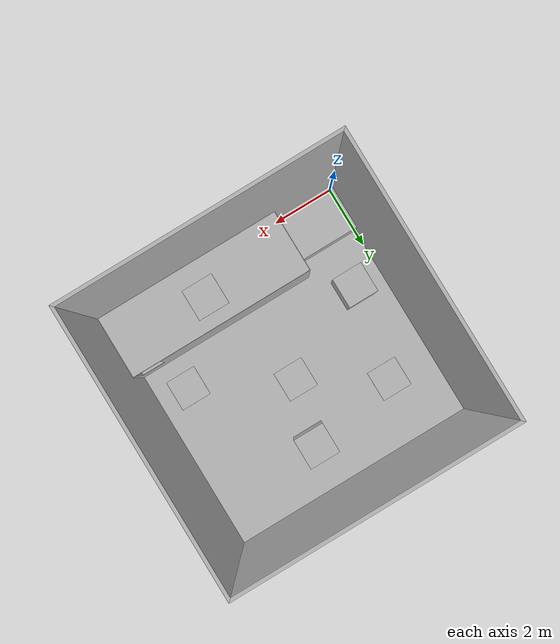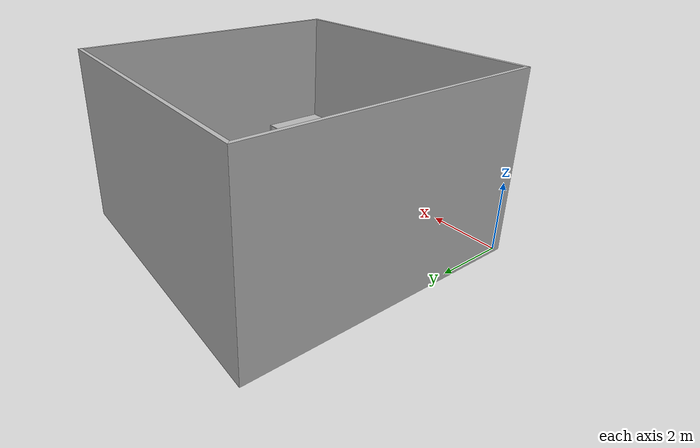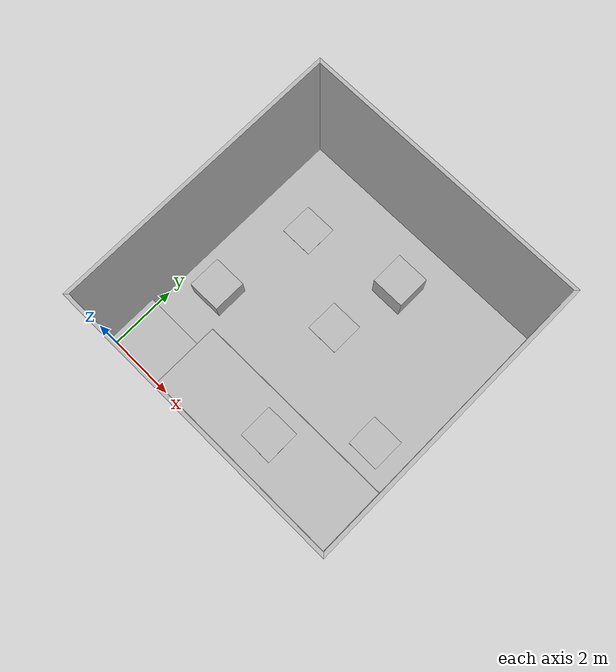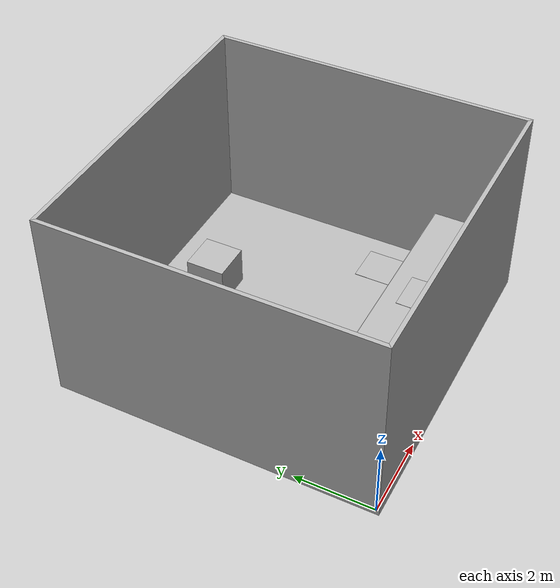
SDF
<sdf version="1.6">
 <world name="default">
  <spherical_coordinates>
   <surface_model>EARTH_WGS84</surface_model>
   <latitude_deg>47.397743</latitude_deg>
   <longitude_deg>8.545594</longitude_deg>
   <elevation>0.0</elevation>
   <heading_deg>0</heading_deg>
  </spherical_coordinates>
  <light type="directional" name="sun">
   <pose>0 0 10 0 0 0</pose>
   <diffuse>0.8 0.8 0.8 1</diffuse>
   <specular>0.2 0.2 0.2 1</specular>
   <attenuation>
    <range>1000</range>
    <constant>0.9</constant>
    <linear>0.01</linear>
    <quadratic>0.001</quadratic>
   </attenuation>
   <direction>-0.5 0.1 -0.9</direction>
  </light>
  <include><uri>file:///home/lmnr31/ros2_ws/src/arena_2025/model.sdf</uri><name>arena_2025</name></include>
  <physics name="default_physics" type="ode">
   <max_step_size>0.005</max_step_size>
   <real_time_update_rate>200</real_time_update_rate>
  </physics>
 </world>
</sdf>

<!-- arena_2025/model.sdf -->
<sdf version='1.11'>
  <model name='arena_2025'>
    <link name='base_link'>
      <inertial>
        <pose>3.7872625755697582 3.822045551665687 1.663627482728099 0 0 0</pose>
        <mass>209975.3320400707</mass>
        <inertia>
          <ixx>2460304.4850998539</ixx>
          <ixy>-120557.6832384705</ixy>
          <ixz>-60338.607062061783</ixz>
          <iyy>2418802.5829065661</iyy>
          <iyz>-44511.245931612328</iyz>
          <izz>3767199.0722933579</izz>
        </inertia>
      </inertial>
      <collision name='base_link_collision_collision'>
        <pose>0 0 0 0 0 0</pose>
        <geometry>
          <mesh>
            <scale>0.001 0.001 0.001</scale>
            <uri>meshes/base_link.stl</uri>
          </mesh>
        </geometry>
      </collision>
      <collision name='base_link_fixed_joint_lump__casa_paredes_collision_collision_1'>
        <pose>0 0 0 0 0 0</pose>
        <geometry>
          <mesh>
            <scale>0.001 0.001 0.001</scale>
            <uri>meshes/casa_paredes.stl</uri>
          </mesh>
        </geometry>
      </collision>
      <collision name='base_link_fixed_joint_lump__casa_teto_collision_collision_2'>
        <pose>0 0 4.163336342344337e-17 0 0 0</pose>
        <geometry>
          <mesh>
            <scale>0.001 0.001 0.001</scale>
            <uri>meshes/casa_teto.stl</uri>
          </mesh>
        </geometry>
      </collision>
      <collision name='base_link_fixed_joint_lump__Landing_Bases6_collision_collision_3'>
        <pose>0 -1.110223024625157e-16 -1.8041124150158789e-16 0 0 0</pose>
        <geometry>
          <mesh>
            <scale>0.001 0.001 0.001</scale>
            <uri>meshes/Landing_Bases6.stl</uri>
          </mesh>
        </geometry>
      </collision>
      <collision name='base_link_fixed_joint_lump__Landing_Bases1_collision_collision_4'>
        <pose>0 0 0 0 0 0</pose>
        <geometry>
          <mesh>
            <scale>0.001 0.001 0.001</scale>
            <uri>meshes/Landing_Bases1.stl</uri>
          </mesh>
        </geometry>
      </collision>
      <collision name='base_link_fixed_joint_lump__Landing_Bases3_collision_collision_5'>
        <pose>0 0 0 0 0 0</pose>
        <geometry>
          <mesh>
            <scale>0.001 0.001 0.001</scale>
            <uri>meshes/Landing_Bases3.stl</uri>
          </mesh>
        </geometry>
      </collision>
      <collision name='base_link_fixed_joint_lump__Landing_Bases2_collision_collision_6'>
        <pose>0 0 0 0 0 0</pose>
        <geometry>
          <mesh>
            <scale>0.001 0.001 0.001</scale>
            <uri>meshes/Landing_Bases2.stl</uri>
          </mesh>
        </geometry>
      </collision>
      <collision name='base_link_fixed_joint_lump__Landing_Bases4_collision_collision_7'>
        <pose>0 0 0 0 0 0</pose>
        <geometry>
          <mesh>
            <scale>0.001 0.001 0.001</scale>
            <uri>meshes/Landing_Bases4.stl</uri>
          </mesh>
        </geometry>
      </collision>
      <collision name='base_link_fixed_joint_lump__Landing_Bases5_collision_collision_8'>
        <pose>0 0 0 0 0 0</pose>
        <geometry>
          <mesh>
            <scale>0.001 0.001 0.001</scale>
            <uri>meshes/Landing_Bases5.stl</uri>
          </mesh>
        </geometry>
      </collision>
      <collision name='base_link_fixed_joint_lump__parede2_collision_collision_9'>
        <pose>0 -6.9388939039072284e-18 -6.9388939039072284e-18 0 0 0</pose>
        <geometry>
          <mesh>
            <scale>0.001 0.001 0.001</scale>
            <uri>meshes/parede2.stl</uri>
          </mesh>
        </geometry>
      </collision>
      <collision name='base_link_fixed_joint_lump__parede1_collision_collision_10'>
        <pose>-6.9388939039072284e-18 0 -6.9388939039072284e-18 0 0 0</pose>
        <geometry>
          <mesh>
            <scale>0.001 0.001 0.001</scale>
            <uri>meshes/parede1.stl</uri>
          </mesh>
        </geometry>
      </collision>
      <collision name='base_link_fixed_joint_lump__parede4_collision_collision_11'>
        <pose>0 0 -2.4841240175987882e-15 0 0 0</pose>
        <geometry>
          <mesh>
            <scale>0.001 0.001 0.001</scale>
            <uri>meshes/parede4.stl</uri>
          </mesh>
        </geometry>
      </collision>
      <collision name='base_link_fixed_joint_lump__parede3_collision_collision_12'>
        <pose>0 -4.4408920985006262e-16 1.068589661201713e-15 1.224646799147353e-16 -7.4987989133092894e-33 1.224646799147353e-16</pose>
        <geometry>
          <mesh>
            <scale>0.001 0.001 0.001</scale>
            <uri>meshes/parede3.stl</uri>
          </mesh>
        </geometry>
      </collision>
      <collision name='base_link_fixed_joint_lump__Takeoff_Base_collision_collision_13'>
        <pose>0 0 0 0 0 0</pose>
        <geometry>
          <mesh>
            <scale>0.001 0.001 0.001</scale>
            <uri>meshes/Takeoff_Base.stl</uri>
          </mesh>
        </geometry>
      </collision>
      <visual name='base_link_visual_visual'>
        <pose>0 0 0 0 0 0</pose>
        <geometry>
          <mesh>
            <scale>0.001 0.001 0.001</scale>
            <uri>meshes/base_link.stl</uri>
          </mesh>
        </geometry>
      </visual>
      <visual name='base_link_fixed_joint_lump__casa_paredes_visual_visual_1'>
        <pose>0 0 0 0 0 0</pose>
        <geometry>
          <mesh>
            <scale>0.001 0.001 0.001</scale>
            <uri>meshes/casa_paredes.stl</uri>
          </mesh>
        </geometry>
      </visual>
      <visual name='base_link_fixed_joint_lump__casa_teto_visual_visual_2'>
        <pose>0 0 4.163336342344337e-17 0 0 0</pose>
        <geometry>
          <mesh>
            <scale>0.001 0.001 0.001</scale>
            <uri>meshes/casa_teto.stl</uri>
          </mesh>
        </geometry>
      </visual>
      <visual name='base_link_fixed_joint_lump__Landing_Bases6_visual_visual_3'>
        <pose>0 -1.110223024625157e-16 -1.8041124150158789e-16 0 0 0</pose>
        <geometry>
          <mesh>
            <scale>0.001 0.001 0.001</scale>
            <uri>meshes/Landing_Bases6.stl</uri>
          </mesh>
        </geometry>
      </visual>
      <visual name='base_link_fixed_joint_lump__Landing_Bases1_visual_visual_4'>
        <pose>0 0 0 0 0 0</pose>
        <geometry>
          <mesh>
            <scale>0.001 0.001 0.001</scale>
            <uri>meshes/Landing_Bases1.stl</uri>
          </mesh>
        </geometry>
      </visual>
      <visual name='base_link_fixed_joint_lump__Landing_Bases3_visual_visual_5'>
        <pose>0 0 0 0 0 0</pose>
        <geometry>
          <mesh>
            <scale>0.001 0.001 0.001</scale>
            <uri>meshes/Landing_Bases3.stl</uri>
          </mesh>
        </geometry>
      </visual>
      <visual name='base_link_fixed_joint_lump__Landing_Bases2_visual_visual_6'>
        <pose>0 0 0 0 0 0</pose>
        <geometry>
          <mesh>
            <scale>0.001 0.001 0.001</scale>
            <uri>meshes/Landing_Bases2.stl</uri>
          </mesh>
        </geometry>
      </visual>
      <visual name='base_link_fixed_joint_lump__Landing_Bases4_visual_visual_7'>
        <pose>0 0 0 0 0 0</pose>
        <geometry>
          <mesh>
            <scale>0.001 0.001 0.001</scale>
            <uri>meshes/Landing_Bases4.stl</uri>
          </mesh>
        </geometry>
      </visual>
      <visual name='base_link_fixed_joint_lump__Landing_Bases5_visual_visual_8'>
        <pose>0 0 0 0 0 0</pose>
        <geometry>
          <mesh>
            <scale>0.001 0.001 0.001</scale>
            <uri>meshes/Landing_Bases5.stl</uri>
          </mesh>
        </geometry>
      </visual>
      <visual name='base_link_fixed_joint_lump__parede2_visual_visual_9'>
        <pose>0 -6.9388939039072284e-18 -6.9388939039072284e-18 0 0 0</pose>
        <geometry>
          <mesh>
            <scale>0.001 0.001 0.001</scale>
            <uri>meshes/parede2.stl</uri>
          </mesh>
        </geometry>
      </visual>
      <visual name='base_link_fixed_joint_lump__parede1_visual_visual_10'>
        <pose>-6.9388939039072284e-18 0 -6.9388939039072284e-18 0 0 0</pose>
        <geometry>
          <mesh>
            <scale>0.001 0.001 0.001</scale>
            <uri>meshes/parede1.stl</uri>
          </mesh>
        </geometry>
      </visual>
      <visual name='base_link_fixed_joint_lump__parede4_visual_visual_11'>
        <pose>0 0 -2.4841240175987882e-15 0 0 0</pose>
        <geometry>
          <mesh>
            <scale>0.001 0.001 0.001</scale>
            <uri>meshes/parede4.stl</uri>
          </mesh>
        </geometry>
      </visual>
      <visual name='base_link_fixed_joint_lump__parede3_visual_visual_12'>
        <pose>0 -4.4408920985006262e-16 1.068589661201713e-15 1.224646799147353e-16 -7.4987989133092894e-33 1.224646799147353e-16</pose>
        <geometry>
          <mesh>
            <scale>0.001 0.001 0.001</scale>
            <uri>meshes/parede3.stl</uri>
          </mesh>
        </geometry>
      </visual>
      <visual name='base_link_fixed_joint_lump__Takeoff_Base_visual_visual_13'>
        <pose>0 0 0 0 0 0</pose>
        <geometry>
          <mesh>
            <scale>0.001 0.001 0.001</scale>
            <uri>meshes/Takeoff_Base.stl</uri>
          </mesh>
        </geometry>
      </visual>
    </link>
    <frame name='casa_teto_Rígido-19' attached_to='casa_teto'>
      <pose>0.011999969999999961 0.08800454000000002 0.0040000000000000573 0 0 0</pose>
    </frame>
    <frame name='Landing_Bases6' attached_to='casa_teto_Rígido-19'>
      <pose>0 0 0 0 0 0</pose>
    </frame>
    <frame name='casa_paredes_Rígido-20' attached_to='casa_paredes'>
      <pose>0 0 1.522 0 0 0</pose>
    </frame>
    <frame name='casa_teto' attached_to='casa_paredes_Rígido-20'>
      <pose>0 0 0 0 0 0</pose>
    </frame>
    <frame name='base_link_Rígido-11' attached_to='base_link'>
      <pose>4.9880000300000003 0.99999545999999995 0.072999999999999995 0 0 0</pose>
    </frame>
    <frame name='casa_paredes' attached_to='base_link_Rígido-11'>
      <pose>0 0 0 0 0 0</pose>
    </frame>
    <frame name='base_link_Rígido-13' attached_to='base_link'>
      <pose>1 3 0.099000000000000005 0 0 0</pose>
    </frame>
    <frame name='Landing_Bases1' attached_to='base_link_Rígido-13'>
      <pose>0 0 0 0 0 0</pose>
    </frame>
    <frame name='base_link_Rígido-14' attached_to='base_link'>
      <pose>1.5 6 0.099000000000000005 0 0 0</pose>
    </frame>
    <frame name='Landing_Bases3' attached_to='base_link_Rígido-14'>
      <pose>0 0 0 0 0 0</pose>
    </frame>
    <frame name='base_link_Rígido-15' attached_to='base_link'>
      <pose>4.5 6.5 0.099000000000000005 0 0 0</pose>
    </frame>
    <frame name='Landing_Bases2' attached_to='base_link_Rígido-15'>
      <pose>0 0 0 0 0 0</pose>
    </frame>
    <frame name='base_link_Rígido-16' attached_to='base_link'>
      <pose>4 4.5 0.099000000000000005 0 0 0</pose>
    </frame>
    <frame name='Landing_Bases4' attached_to='base_link_Rígido-16'>
      <pose>0 0 0 0 0 0</pose>
    </frame>
    <frame name='base_link_Rígido-17' attached_to='base_link'>
      <pose>7 3 0.099000000000000005 0 0 0</pose>
    </frame>
    <frame name='Landing_Bases5' attached_to='base_link_Rígido-17'>
      <pose>0 0 0 0 0 0</pose>
    </frame>
    <frame name='base_link_Rígido-5' attached_to='base_link'>
      <pose>4 -0.050000000000000003 0.050000000000000003 1.5707963267948959 0 0</pose>
    </frame>
    <frame name='parede2' attached_to='base_link_Rígido-5'>
      <pose>0 0 0 0 0 0</pose>
    </frame>
    <frame name='base_link_Rígido-6' attached_to='base_link'>
      <pose>-0.050000000000000003 4 0.050000000000000003 0 -1.5707963267948966 0</pose>
    </frame>
    <frame name='parede1' attached_to='base_link_Rígido-6'>
      <pose>0 0 0 0 0 0</pose>
    </frame>
    <frame name='base_link_Rígido-7' attached_to='base_link'>
      <pose>4 8.0500000000000007 0.050000000000000003 -1.5707963267948959 0 0</pose>
    </frame>
    <frame name='parede4' attached_to='base_link_Rígido-7'>
      <pose>0 0 0 0 0 0</pose>
    </frame>
    <frame name='base_link_Rígido-8' attached_to='base_link'>
      <pose>8.0500000000000007 3.9999999900000001 0.050000000000000003 -3.1415926535897931 -1.5707963267948966 0</pose>
    </frame>
    <frame name='parede3' attached_to='base_link_Rígido-8'>
      <pose>0 0 0 0 0 0</pose>
    </frame>
    <frame name='base_link_Rígido-9' attached_to='base_link'>
      <pose>1 0.75 0.099000000000000005 0 0 0</pose>
    </frame>
    <frame name='Takeoff_Base' attached_to='base_link_Rígido-9'>
      <pose>0 0 0 0 0 0</pose>
    </frame>
  </model>
</sdf>
